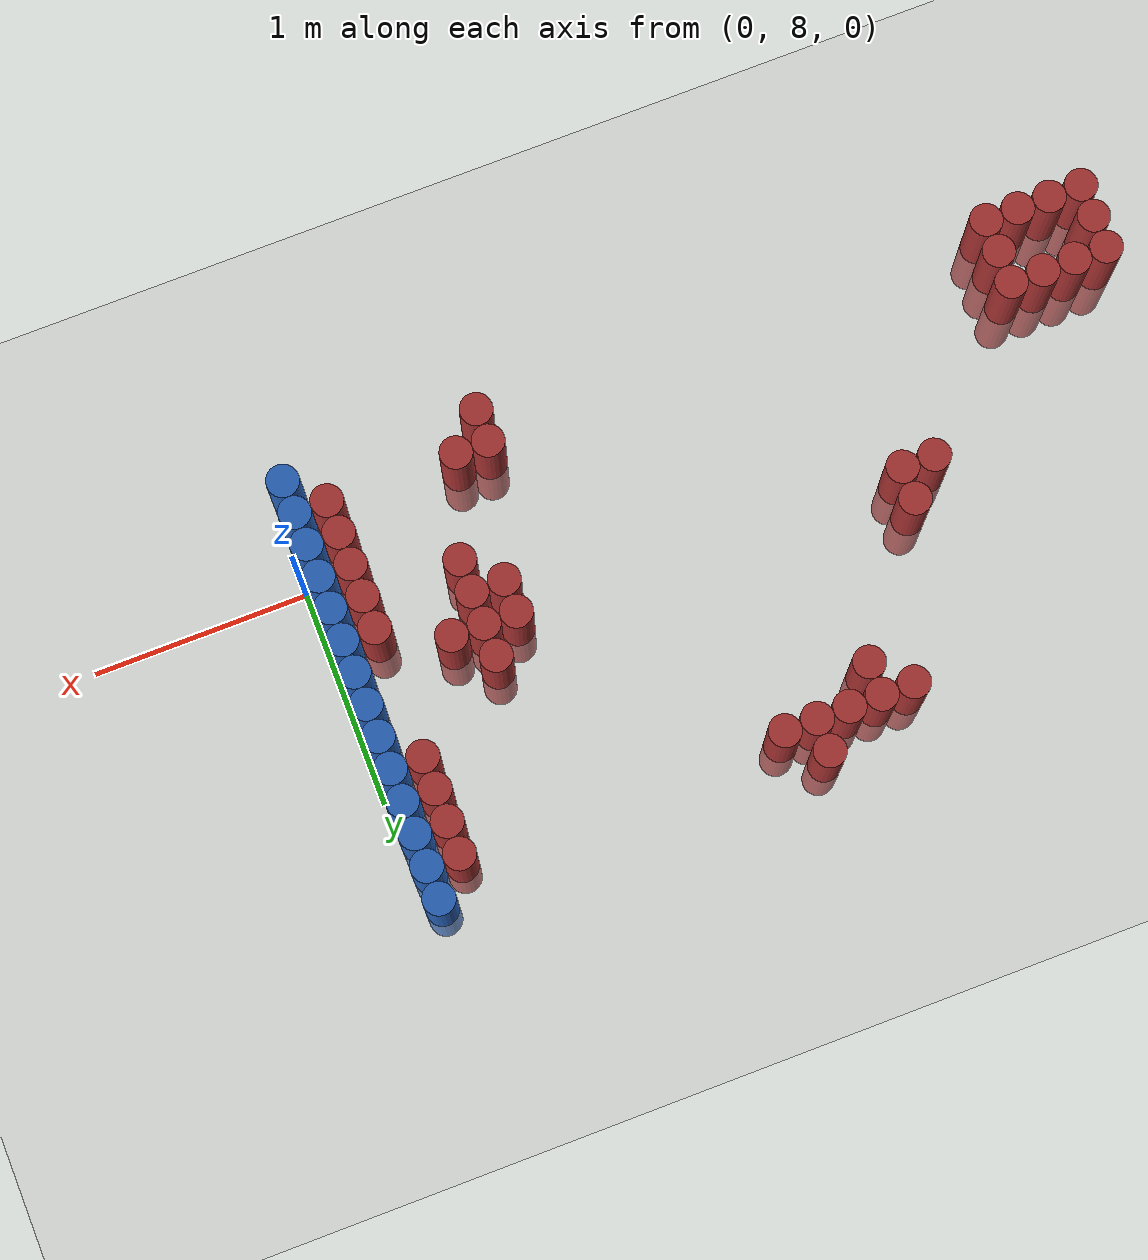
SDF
<sdf version="1.6">
 <world name="default">
  <model name="ground_plane">
   <static>1</static>
   <link name="link">
    <collision name="collision">
     <geometry><plane><normal>0 0 1</normal><size>100 100</size></plane></geometry>
     <surface><friction><ode><mu>100</mu><mu2>50</mu2></ode></friction></surface>
    </collision>
    <visual name="visual">
     <cast_shadows>0</cast_shadows>
     <geometry><plane><normal>0 0 1</normal><size>100 100</size></plane></geometry>
     <material>
      <script><uri>file://media/materials/scripts/gazebo.material</uri><name>Gazebo/Grey</name></script>
     </material>
    </visual>
   </link>
  </model>
  <model name="unit_cylinder_154">
   <static>1</static>
   <pose>-3.825000 7.575000 0.000000 0.000000 0.000000 0.000000</pose>
   <link name="link">
    <inertial>
     <mass>1</mass>
     <inertia><ixx>0.145833</ixx><ixy>0</ixy><ixz>0</ixz><iyy>0.145833</iyy><iyz>0</iyz><izz>0.125</izz></inertia>
    </inertial>
    <collision name="collision">
     <geometry><cylinder><radius>0.075000</radius><length>1</length></cylinder></geometry>
    </collision>
    <visual name="visual">
     <geometry><cylinder><radius>0.075000</radius><length>1</length></cylinder></geometry>
     <material>
      <ambient>0.648000 0.192000 0.192000 1</ambient>
      <diffuse>0.648000 0.192000 0.192000 1</diffuse>
     </material>
     <material>
      <script><name>Gazebo/Grey</name><uri>file://media/materials/scripts/gazebo.material</uri></script>
     </material>
    </visual>
   </link>
  </model>
  <model name="unit_cylinder_155">
   <static>1</static>
   <pose>-3.825000 7.725000 0.000000 0.000000 0.000000 0.000000</pose>
   <link name="link">
    <inertial>
     <mass>1</mass>
     <inertia><ixx>0.145833</ixx><ixy>0</ixy><ixz>0</ixz><iyy>0.145833</iyy><iyz>0</iyz><izz>0.125</izz></inertia>
    </inertial>
    <collision name="collision">
     <geometry><cylinder><radius>0.075000</radius><length>1</length></cylinder></geometry>
    </collision>
    <visual name="visual">
     <geometry><cylinder><radius>0.075000</radius><length>1</length></cylinder></geometry>
     <material>
      <ambient>0.648000 0.192000 0.192000 1</ambient>
      <diffuse>0.648000 0.192000 0.192000 1</diffuse>
     </material>
     <material>
      <script><name>Gazebo/Grey</name><uri>file://media/materials/scripts/gazebo.material</uri></script>
     </material>
    </visual>
   </link>
  </model>
  <model name="unit_cylinder_156">
   <static>1</static>
   <pose>-3.825000 7.875000 0.000000 0.000000 0.000000 0.000000</pose>
   <link name="link">
    <inertial>
     <mass>1</mass>
     <inertia><ixx>0.145833</ixx><ixy>0</ixy><ixz>0</ixz><iyy>0.145833</iyy><iyz>0</iyz><izz>0.125</izz></inertia>
    </inertial>
    <collision name="collision">
     <geometry><cylinder><radius>0.075000</radius><length>1</length></cylinder></geometry>
    </collision>
    <visual name="visual">
     <geometry><cylinder><radius>0.075000</radius><length>1</length></cylinder></geometry>
     <material>
      <ambient>0.648000 0.192000 0.192000 1</ambient>
      <diffuse>0.648000 0.192000 0.192000 1</diffuse>
     </material>
     <material>
      <script><name>Gazebo/Grey</name><uri>file://media/materials/scripts/gazebo.material</uri></script>
     </material>
    </visual>
   </link>
  </model>
  <model name="unit_cylinder_158">
   <static>1</static>
   <pose>-3.675000 7.575000 0.000000 0.000000 0.000000 0.000000</pose>
   <link name="link">
    <inertial>
     <mass>1</mass>
     <inertia><ixx>0.145833</ixx><ixy>0</ixy><ixz>0</ixz><iyy>0.145833</iyy><iyz>0</iyz><izz>0.125</izz></inertia>
    </inertial>
    <collision name="collision">
     <geometry><cylinder><radius>0.075000</radius><length>1</length></cylinder></geometry>
    </collision>
    <visual name="visual">
     <geometry><cylinder><radius>0.075000</radius><length>1</length></cylinder></geometry>
     <material>
      <ambient>0.648000 0.192000 0.192000 1</ambient>
      <diffuse>0.648000 0.192000 0.192000 1</diffuse>
     </material>
     <material>
      <script><name>Gazebo/Grey</name><uri>file://media/materials/scripts/gazebo.material</uri></script>
     </material>
    </visual>
   </link>
  </model>
  <model name="unit_cylinder_159">
   <static>1</static>
   <pose>-3.675000 7.875000 0.000000 0.000000 0.000000 0.000000</pose>
   <link name="link">
    <inertial>
     <mass>1</mass>
     <inertia><ixx>0.145833</ixx><ixy>0</ixy><ixz>0</ixz><iyy>0.145833</iyy><iyz>0</iyz><izz>0.125</izz></inertia>
    </inertial>
    <collision name="collision">
     <geometry><cylinder><radius>0.075000</radius><length>1</length></cylinder></geometry>
    </collision>
    <visual name="visual">
     <geometry><cylinder><radius>0.075000</radius><length>1</length></cylinder></geometry>
     <material>
      <ambient>0.648000 0.192000 0.192000 1</ambient>
      <diffuse>0.648000 0.192000 0.192000 1</diffuse>
     </material>
     <material>
      <script><name>Gazebo/Grey</name><uri>file://media/materials/scripts/gazebo.material</uri></script>
     </material>
    </visual>
   </link>
  </model>
  <model name="unit_cylinder_161">
   <static>1</static>
   <pose>-3.525000 7.575000 0.000000 0.000000 0.000000 0.000000</pose>
   <link name="link">
    <inertial>
     <mass>1</mass>
     <inertia><ixx>0.145833</ixx><ixy>0</ixy><ixz>0</ixz><iyy>0.145833</iyy><iyz>0</iyz><izz>0.125</izz></inertia>
    </inertial>
    <collision name="collision">
     <geometry><cylinder><radius>0.075000</radius><length>1</length></cylinder></geometry>
    </collision>
    <visual name="visual">
     <geometry><cylinder><radius>0.075000</radius><length>1</length></cylinder></geometry>
     <material>
      <ambient>0.648000 0.192000 0.192000 1</ambient>
      <diffuse>0.648000 0.192000 0.192000 1</diffuse>
     </material>
     <material>
      <script><name>Gazebo/Grey</name><uri>file://media/materials/scripts/gazebo.material</uri></script>
     </material>
    </visual>
   </link>
  </model>
  <model name="unit_cylinder_162">
   <static>1</static>
   <pose>-3.525000 7.875000 0.000000 0.000000 0.000000 0.000000</pose>
   <link name="link">
    <inertial>
     <mass>1</mass>
     <inertia><ixx>0.145833</ixx><ixy>0</ixy><ixz>0</ixz><iyy>0.145833</iyy><iyz>0</iyz><izz>0.125</izz></inertia>
    </inertial>
    <collision name="collision">
     <geometry><cylinder><radius>0.075000</radius><length>1</length></cylinder></geometry>
    </collision>
    <visual name="visual">
     <geometry><cylinder><radius>0.075000</radius><length>1</length></cylinder></geometry>
     <material>
      <ambient>0.648000 0.192000 0.192000 1</ambient>
      <diffuse>0.648000 0.192000 0.192000 1</diffuse>
     </material>
     <material>
      <script><name>Gazebo/Grey</name><uri>file://media/materials/scripts/gazebo.material</uri></script>
     </material>
    </visual>
   </link>
  </model>
  <model name="unit_cylinder_164">
   <static>1</static>
   <pose>-3.375000 7.575000 0.000000 0.000000 0.000000 0.000000</pose>
   <link name="link">
    <inertial>
     <mass>1</mass>
     <inertia><ixx>0.145833</ixx><ixy>0</ixy><ixz>0</ixz><iyy>0.145833</iyy><iyz>0</iyz><izz>0.125</izz></inertia>
    </inertial>
    <collision name="collision">
     <geometry><cylinder><radius>0.075000</radius><length>1</length></cylinder></geometry>
    </collision>
    <visual name="visual">
     <geometry><cylinder><radius>0.075000</radius><length>1</length></cylinder></geometry>
     <material>
      <ambient>0.648000 0.192000 0.192000 1</ambient>
      <diffuse>0.648000 0.192000 0.192000 1</diffuse>
     </material>
     <material>
      <script><name>Gazebo/Grey</name><uri>file://media/materials/scripts/gazebo.material</uri></script>
     </material>
    </visual>
   </link>
  </model>
  <model name="unit_cylinder_165">
   <static>1</static>
   <pose>-3.375000 7.725000 0.000000 0.000000 0.000000 0.000000</pose>
   <link name="link">
    <inertial>
     <mass>1</mass>
     <inertia><ixx>0.145833</ixx><ixy>0</ixy><ixz>0</ixz><iyy>0.145833</iyy><iyz>0</iyz><izz>0.125</izz></inertia>
    </inertial>
    <collision name="collision">
     <geometry><cylinder><radius>0.075000</radius><length>1</length></cylinder></geometry>
    </collision>
    <visual name="visual">
     <geometry><cylinder><radius>0.075000</radius><length>1</length></cylinder></geometry>
     <material>
      <ambient>0.648000 0.192000 0.192000 1</ambient>
      <diffuse>0.648000 0.192000 0.192000 1</diffuse>
     </material>
     <material>
      <script><name>Gazebo/Grey</name><uri>file://media/materials/scripts/gazebo.material</uri></script>
     </material>
    </visual>
   </link>
  </model>
  <model name="unit_cylinder_166">
   <static>1</static>
   <pose>-3.375000 7.875000 0.000000 0.000000 0.000000 0.000000</pose>
   <link name="link">
    <inertial>
     <mass>1</mass>
     <inertia><ixx>0.145833</ixx><ixy>0</ixy><ixz>0</ixz><iyy>0.145833</iyy><iyz>0</iyz><izz>0.125</izz></inertia>
    </inertial>
    <collision name="collision">
     <geometry><cylinder><radius>0.075000</radius><length>1</length></cylinder></geometry>
    </collision>
    <visual name="visual">
     <geometry><cylinder><radius>0.075000</radius><length>1</length></cylinder></geometry>
     <material>
      <ambient>0.648000 0.192000 0.192000 1</ambient>
      <diffuse>0.648000 0.192000 0.192000 1</diffuse>
     </material>
     <material>
      <script><name>Gazebo/Grey</name><uri>file://media/materials/scripts/gazebo.material</uri></script>
     </material>
    </visual>
   </link>
  </model>
  <model name="unit_cylinder_176">
   <static>1</static>
   <pose>-2.775000 8.475000 0.000000 0.000000 0.000000 0.000000</pose>
   <link name="link">
    <inertial>
     <mass>1</mass>
     <inertia><ixx>0.145833</ixx><ixy>0</ixy><ixz>0</ixz><iyy>0.145833</iyy><iyz>0</iyz><izz>0.125</izz></inertia>
    </inertial>
    <collision name="collision">
     <geometry><cylinder><radius>0.075000</radius><length>1</length></cylinder></geometry>
    </collision>
    <visual name="visual">
     <geometry><cylinder><radius>0.075000</radius><length>1</length></cylinder></geometry>
     <material>
      <ambient>0.648000 0.192000 0.192000 1</ambient>
      <diffuse>0.648000 0.192000 0.192000 1</diffuse>
     </material>
     <material>
      <script><name>Gazebo/Grey</name><uri>file://media/materials/scripts/gazebo.material</uri></script>
     </material>
    </visual>
   </link>
  </model>
  <model name="unit_cylinder_177">
   <static>1</static>
   <pose>-2.625000 8.475000 0.000000 0.000000 0.000000 0.000000</pose>
   <link name="link">
    <inertial>
     <mass>1</mass>
     <inertia><ixx>0.145833</ixx><ixy>0</ixy><ixz>0</ixz><iyy>0.145833</iyy><iyz>0</iyz><izz>0.125</izz></inertia>
    </inertial>
    <collision name="collision">
     <geometry><cylinder><radius>0.075000</radius><length>1</length></cylinder></geometry>
    </collision>
    <visual name="visual">
     <geometry><cylinder><radius>0.075000</radius><length>1</length></cylinder></geometry>
     <material>
      <ambient>0.648000 0.192000 0.192000 1</ambient>
      <diffuse>0.648000 0.192000 0.192000 1</diffuse>
     </material>
     <material>
      <script><name>Gazebo/Grey</name><uri>file://media/materials/scripts/gazebo.material</uri></script>
     </material>
    </visual>
   </link>
  </model>
  <model name="unit_cylinder_178">
   <static>1</static>
   <pose>-2.625000 8.625000 0.000000 0.000000 0.000000 0.000000</pose>
   <link name="link">
    <inertial>
     <mass>1</mass>
     <inertia><ixx>0.145833</ixx><ixy>0</ixy><ixz>0</ixz><iyy>0.145833</iyy><iyz>0</iyz><izz>0.125</izz></inertia>
    </inertial>
    <collision name="collision">
     <geometry><cylinder><radius>0.075000</radius><length>1</length></cylinder></geometry>
    </collision>
    <visual name="visual">
     <geometry><cylinder><radius>0.075000</radius><length>1</length></cylinder></geometry>
     <material>
      <ambient>0.648000 0.192000 0.192000 1</ambient>
      <diffuse>0.648000 0.192000 0.192000 1</diffuse>
     </material>
     <material>
      <script><name>Gazebo/Grey</name><uri>file://media/materials/scripts/gazebo.material</uri></script>
     </material>
    </visual>
   </link>
  </model>
  <model name="unit_cylinder_179">
   <static>1</static>
   <pose>-2.325000 9.375000 0.000000 0.000000 0.000000 0.000000</pose>
   <link name="link">
    <inertial>
     <mass>1</mass>
     <inertia><ixx>0.145833</ixx><ixy>0</ixy><ixz>0</ixz><iyy>0.145833</iyy><iyz>0</iyz><izz>0.125</izz></inertia>
    </inertial>
    <collision name="collision">
     <geometry><cylinder><radius>0.075000</radius><length>1</length></cylinder></geometry>
    </collision>
    <visual name="visual">
     <geometry><cylinder><radius>0.075000</radius><length>1</length></cylinder></geometry>
     <material>
      <ambient>0.648000 0.192000 0.192000 1</ambient>
      <diffuse>0.648000 0.192000 0.192000 1</diffuse>
     </material>
     <material>
      <script><name>Gazebo/Grey</name><uri>file://media/materials/scripts/gazebo.material</uri></script>
     </material>
    </visual>
   </link>
  </model>
  <model name="unit_cylinder_180">
   <static>1</static>
   <pose>-2.175000 9.225000 0.000000 0.000000 0.000000 0.000000</pose>
   <link name="link">
    <inertial>
     <mass>1</mass>
     <inertia><ixx>0.145833</ixx><ixy>0</ixy><ixz>0</ixz><iyy>0.145833</iyy><iyz>0</iyz><izz>0.125</izz></inertia>
    </inertial>
    <collision name="collision">
     <geometry><cylinder><radius>0.075000</radius><length>1</length></cylinder></geometry>
    </collision>
    <visual name="visual">
     <geometry><cylinder><radius>0.075000</radius><length>1</length></cylinder></geometry>
     <material>
      <ambient>0.648000 0.192000 0.192000 1</ambient>
      <diffuse>0.648000 0.192000 0.192000 1</diffuse>
     </material>
     <material>
      <script><name>Gazebo/Grey</name><uri>file://media/materials/scripts/gazebo.material</uri></script>
     </material>
    </visual>
   </link>
  </model>
  <model name="unit_cylinder_181">
   <static>1</static>
   <pose>-2.175000 9.375000 0.000000 0.000000 0.000000 0.000000</pose>
   <link name="link">
    <inertial>
     <mass>1</mass>
     <inertia><ixx>0.145833</ixx><ixy>0</ixy><ixz>0</ixz><iyy>0.145833</iyy><iyz>0</iyz><izz>0.125</izz></inertia>
    </inertial>
    <collision name="collision">
     <geometry><cylinder><radius>0.075000</radius><length>1</length></cylinder></geometry>
    </collision>
    <visual name="visual">
     <geometry><cylinder><radius>0.075000</radius><length>1</length></cylinder></geometry>
     <material>
      <ambient>0.648000 0.192000 0.192000 1</ambient>
      <diffuse>0.648000 0.192000 0.192000 1</diffuse>
     </material>
     <material>
      <script><name>Gazebo/Grey</name><uri>file://media/materials/scripts/gazebo.material</uri></script>
     </material>
    </visual>
   </link>
  </model>
  <model name="unit_cylinder_182">
   <static>1</static>
   <pose>-2.025000 9.375000 0.000000 0.000000 0.000000 0.000000</pose>
   <link name="link">
    <inertial>
     <mass>1</mass>
     <inertia><ixx>0.145833</ixx><ixy>0</ixy><ixz>0</ixz><iyy>0.145833</iyy><iyz>0</iyz><izz>0.125</izz></inertia>
    </inertial>
    <collision name="collision">
     <geometry><cylinder><radius>0.075000</radius><length>1</length></cylinder></geometry>
    </collision>
    <visual name="visual">
     <geometry><cylinder><radius>0.075000</radius><length>1</length></cylinder></geometry>
     <material>
      <ambient>0.648000 0.192000 0.192000 1</ambient>
      <diffuse>0.648000 0.192000 0.192000 1</diffuse>
     </material>
     <material>
      <script><name>Gazebo/Grey</name><uri>file://media/materials/scripts/gazebo.material</uri></script>
     </material>
    </visual>
   </link>
  </model>
  <model name="unit_cylinder_183">
   <static>1</static>
   <pose>-1.875000 9.375000 0.000000 0.000000 0.000000 0.000000</pose>
   <link name="link">
    <inertial>
     <mass>1</mass>
     <inertia><ixx>0.145833</ixx><ixy>0</ixy><ixz>0</ixz><iyy>0.145833</iyy><iyz>0</iyz><izz>0.125</izz></inertia>
    </inertial>
    <collision name="collision">
     <geometry><cylinder><radius>0.075000</radius><length>1</length></cylinder></geometry>
    </collision>
    <visual name="visual">
     <geometry><cylinder><radius>0.075000</radius><length>1</length></cylinder></geometry>
     <material>
      <ambient>0.648000 0.192000 0.192000 1</ambient>
      <diffuse>0.648000 0.192000 0.192000 1</diffuse>
     </material>
     <material>
      <script><name>Gazebo/Grey</name><uri>file://media/materials/scripts/gazebo.material</uri></script>
     </material>
    </visual>
   </link>
  </model>
  <model name="unit_cylinder_184">
   <static>1</static>
   <pose>-1.875000 9.525000 0.000000 0.000000 0.000000 0.000000</pose>
   <link name="link">
    <inertial>
     <mass>1</mass>
     <inertia><ixx>0.145833</ixx><ixy>0</ixy><ixz>0</ixz><iyy>0.145833</iyy><iyz>0</iyz><izz>0.125</izz></inertia>
    </inertial>
    <collision name="collision">
     <geometry><cylinder><radius>0.075000</radius><length>1</length></cylinder></geometry>
    </collision>
    <visual name="visual">
     <geometry><cylinder><radius>0.075000</radius><length>1</length></cylinder></geometry>
     <material>
      <ambient>0.648000 0.192000 0.192000 1</ambient>
      <diffuse>0.648000 0.192000 0.192000 1</diffuse>
     </material>
     <material>
      <script><name>Gazebo/Grey</name><uri>file://media/materials/scripts/gazebo.material</uri></script>
     </material>
    </visual>
   </link>
  </model>
  <model name="unit_cylinder_186">
   <static>1</static>
   <pose>-1.725000 9.375000 0.000000 0.000000 0.000000 0.000000</pose>
   <link name="link">
    <inertial>
     <mass>1</mass>
     <inertia><ixx>0.145833</ixx><ixy>0</ixy><ixz>0</ixz><iyy>0.145833</iyy><iyz>0</iyz><izz>0.125</izz></inertia>
    </inertial>
    <collision name="collision">
     <geometry><cylinder><radius>0.075000</radius><length>1</length></cylinder></geometry>
    </collision>
    <visual name="visual">
     <geometry><cylinder><radius>0.075000</radius><length>1</length></cylinder></geometry>
     <material>
      <ambient>0.648000 0.192000 0.192000 1</ambient>
      <diffuse>0.648000 0.192000 0.192000 1</diffuse>
     </material>
     <material>
      <script><name>Gazebo/Grey</name><uri>file://media/materials/scripts/gazebo.material</uri></script>
     </material>
    </visual>
   </link>
  </model>
  <model name="unit_cylinder_203">
   <static>1</static>
   <pose>-0.975000 7.575000 0.000000 0.000000 0.000000 0.000000</pose>
   <link name="link">
    <inertial>
     <mass>1</mass>
     <inertia><ixx>0.145833</ixx><ixy>0</ixy><ixz>0</ixz><iyy>0.145833</iyy><iyz>0</iyz><izz>0.125</izz></inertia>
    </inertial>
    <collision name="collision">
     <geometry><cylinder><radius>0.075000</radius><length>1</length></cylinder></geometry>
    </collision>
    <visual name="visual">
     <geometry><cylinder><radius>0.075000</radius><length>1</length></cylinder></geometry>
     <material>
      <ambient>0.648000 0.192000 0.192000 1</ambient>
      <diffuse>0.648000 0.192000 0.192000 1</diffuse>
     </material>
     <material>
      <script><name>Gazebo/Grey</name><uri>file://media/materials/scripts/gazebo.material</uri></script>
     </material>
    </visual>
   </link>
  </model>
  <model name="unit_cylinder_204">
   <static>1</static>
   <pose>-0.975000 7.725000 0.000000 0.000000 0.000000 0.000000</pose>
   <link name="link">
    <inertial>
     <mass>1</mass>
     <inertia><ixx>0.145833</ixx><ixy>0</ixy><ixz>0</ixz><iyy>0.145833</iyy><iyz>0</iyz><izz>0.125</izz></inertia>
    </inertial>
    <collision name="collision">
     <geometry><cylinder><radius>0.075000</radius><length>1</length></cylinder></geometry>
    </collision>
    <visual name="visual">
     <geometry><cylinder><radius>0.075000</radius><length>1</length></cylinder></geometry>
     <material>
      <ambient>0.648000 0.192000 0.192000 1</ambient>
      <diffuse>0.648000 0.192000 0.192000 1</diffuse>
     </material>
     <material>
      <script><name>Gazebo/Grey</name><uri>file://media/materials/scripts/gazebo.material</uri></script>
     </material>
    </visual>
   </link>
  </model>
  <model name="unit_cylinder_207">
   <static>1</static>
   <pose>-0.825000 7.725000 0.000000 0.000000 0.000000 0.000000</pose>
   <link name="link">
    <inertial>
     <mass>1</mass>
     <inertia><ixx>0.145833</ixx><ixy>0</ixy><ixz>0</ixz><iyy>0.145833</iyy><iyz>0</iyz><izz>0.125</izz></inertia>
    </inertial>
    <collision name="collision">
     <geometry><cylinder><radius>0.075000</radius><length>1</length></cylinder></geometry>
    </collision>
    <visual name="visual">
     <geometry><cylinder><radius>0.075000</radius><length>1</length></cylinder></geometry>
     <material>
      <ambient>0.648000 0.192000 0.192000 1</ambient>
      <diffuse>0.648000 0.192000 0.192000 1</diffuse>
     </material>
     <material>
      <script><name>Gazebo/Grey</name><uri>file://media/materials/scripts/gazebo.material</uri></script>
     </material>
    </visual>
   </link>
  </model>
  <model name="unit_cylinder_208">
   <static>1</static>
   <pose>-0.825000 8.325000 0.000000 0.000000 0.000000 0.000000</pose>
   <link name="link">
    <inertial>
     <mass>1</mass>
     <inertia><ixx>0.145833</ixx><ixy>0</ixy><ixz>0</ixz><iyy>0.145833</iyy><iyz>0</iyz><izz>0.125</izz></inertia>
    </inertial>
    <collision name="collision">
     <geometry><cylinder><radius>0.075000</radius><length>1</length></cylinder></geometry>
    </collision>
    <visual name="visual">
     <geometry><cylinder><radius>0.075000</radius><length>1</length></cylinder></geometry>
     <material>
      <ambient>0.648000 0.192000 0.192000 1</ambient>
      <diffuse>0.648000 0.192000 0.192000 1</diffuse>
     </material>
     <material>
      <script><name>Gazebo/Grey</name><uri>file://media/materials/scripts/gazebo.material</uri></script>
     </material>
    </visual>
   </link>
  </model>
  <model name="unit_cylinder_209">
   <static>1</static>
   <pose>-0.825000 8.475000 0.000000 0.000000 0.000000 0.000000</pose>
   <link name="link">
    <inertial>
     <mass>1</mass>
     <inertia><ixx>0.145833</ixx><ixy>0</ixy><ixz>0</ixz><iyy>0.145833</iyy><iyz>0</iyz><izz>0.125</izz></inertia>
    </inertial>
    <collision name="collision">
     <geometry><cylinder><radius>0.075000</radius><length>1</length></cylinder></geometry>
    </collision>
    <visual name="visual">
     <geometry><cylinder><radius>0.075000</radius><length>1</length></cylinder></geometry>
     <material>
      <ambient>0.648000 0.192000 0.192000 1</ambient>
      <diffuse>0.648000 0.192000 0.192000 1</diffuse>
     </material>
     <material>
      <script><name>Gazebo/Grey</name><uri>file://media/materials/scripts/gazebo.material</uri></script>
     </material>
    </visual>
   </link>
  </model>
  <model name="unit_cylinder_212">
   <static>1</static>
   <pose>-0.675000 8.175000 0.000000 0.000000 0.000000 0.000000</pose>
   <link name="link">
    <inertial>
     <mass>1</mass>
     <inertia><ixx>0.145833</ixx><ixy>0</ixy><ixz>0</ixz><iyy>0.145833</iyy><iyz>0</iyz><izz>0.125</izz></inertia>
    </inertial>
    <collision name="collision">
     <geometry><cylinder><radius>0.075000</radius><length>1</length></cylinder></geometry>
    </collision>
    <visual name="visual">
     <geometry><cylinder><radius>0.075000</radius><length>1</length></cylinder></geometry>
     <material>
      <ambient>0.648000 0.192000 0.192000 1</ambient>
      <diffuse>0.648000 0.192000 0.192000 1</diffuse>
     </material>
     <material>
      <script><name>Gazebo/Grey</name><uri>file://media/materials/scripts/gazebo.material</uri></script>
     </material>
    </visual>
   </link>
  </model>
  <model name="unit_cylinder_213">
   <static>1</static>
   <pose>-0.675000 8.325000 0.000000 0.000000 0.000000 0.000000</pose>
   <link name="link">
    <inertial>
     <mass>1</mass>
     <inertia><ixx>0.145833</ixx><ixy>0</ixy><ixz>0</ixz><iyy>0.145833</iyy><iyz>0</iyz><izz>0.125</izz></inertia>
    </inertial>
    <collision name="collision">
     <geometry><cylinder><radius>0.075000</radius><length>1</length></cylinder></geometry>
    </collision>
    <visual name="visual">
     <geometry><cylinder><radius>0.075000</radius><length>1</length></cylinder></geometry>
     <material>
      <ambient>0.648000 0.192000 0.192000 1</ambient>
      <diffuse>0.648000 0.192000 0.192000 1</diffuse>
     </material>
     <material>
      <script><name>Gazebo/Grey</name><uri>file://media/materials/scripts/gazebo.material</uri></script>
     </material>
    </visual>
   </link>
  </model>
  <model name="unit_cylinder_214">
   <static>1</static>
   <pose>-0.675000 8.475000 0.000000 0.000000 0.000000 0.000000</pose>
   <link name="link">
    <inertial>
     <mass>1</mass>
     <inertia><ixx>0.145833</ixx><ixy>0</ixy><ixz>0</ixz><iyy>0.145833</iyy><iyz>0</iyz><izz>0.125</izz></inertia>
    </inertial>
    <collision name="collision">
     <geometry><cylinder><radius>0.075000</radius><length>1</length></cylinder></geometry>
    </collision>
    <visual name="visual">
     <geometry><cylinder><radius>0.075000</radius><length>1</length></cylinder></geometry>
     <material>
      <ambient>0.648000 0.192000 0.192000 1</ambient>
      <diffuse>0.648000 0.192000 0.192000 1</diffuse>
     </material>
     <material>
      <script><name>Gazebo/Grey</name><uri>file://media/materials/scripts/gazebo.material</uri></script>
     </material>
    </visual>
   </link>
  </model>
  <model name="unit_cylinder_215">
   <static>1</static>
   <pose>-0.675000 8.625000 0.000000 0.000000 0.000000 0.000000</pose>
   <link name="link">
    <inertial>
     <mass>1</mass>
     <inertia><ixx>0.145833</ixx><ixy>0</ixy><ixz>0</ixz><iyy>0.145833</iyy><iyz>0</iyz><izz>0.125</izz></inertia>
    </inertial>
    <collision name="collision">
     <geometry><cylinder><radius>0.075000</radius><length>1</length></cylinder></geometry>
    </collision>
    <visual name="visual">
     <geometry><cylinder><radius>0.075000</radius><length>1</length></cylinder></geometry>
     <material>
      <ambient>0.648000 0.192000 0.192000 1</ambient>
      <diffuse>0.648000 0.192000 0.192000 1</diffuse>
     </material>
     <material>
      <script><name>Gazebo/Grey</name><uri>file://media/materials/scripts/gazebo.material</uri></script>
     </material>
    </visual>
   </link>
  </model>
  <model name="unit_cylinder_216">
   <static>1</static>
   <pose>-0.525000 8.475000 0.000000 0.000000 0.000000 0.000000</pose>
   <link name="link">
    <inertial>
     <mass>1</mass>
     <inertia><ixx>0.145833</ixx><ixy>0</ixy><ixz>0</ixz><iyy>0.145833</iyy><iyz>0</iyz><izz>0.125</izz></inertia>
    </inertial>
    <collision name="collision">
     <geometry><cylinder><radius>0.075000</radius><length>1</length></cylinder></geometry>
    </collision>
    <visual name="visual">
     <geometry><cylinder><radius>0.075000</radius><length>1</length></cylinder></geometry>
     <material>
      <ambient>0.648000 0.192000 0.192000 1</ambient>
      <diffuse>0.648000 0.192000 0.192000 1</diffuse>
     </material>
     <material>
      <script><name>Gazebo/Grey</name><uri>file://media/materials/scripts/gazebo.material</uri></script>
     </material>
    </visual>
   </link>
  </model>
  <model name="unit_cylinder_227">
   <static>1</static>
   <pose>-0.225000 7.725000 0.000000 0.000000 0.000000 0.000000</pose>
   <link name="link">
    <inertial>
     <mass>1</mass>
     <inertia><ixx>0.145833</ixx><ixy>0</ixy><ixz>0</ixz><iyy>0.145833</iyy><iyz>0</iyz><izz>0.125</izz></inertia>
    </inertial>
    <collision name="collision">
     <geometry><cylinder><radius>0.075000</radius><length>1</length></cylinder></geometry>
    </collision>
    <visual name="visual">
     <geometry><cylinder><radius>0.075000</radius><length>1</length></cylinder></geometry>
     <material>
      <ambient>0.648000 0.192000 0.192000 1</ambient>
      <diffuse>0.648000 0.192000 0.192000 1</diffuse>
     </material>
     <material>
      <script><name>Gazebo/Grey</name><uri>file://media/materials/scripts/gazebo.material</uri></script>
     </material>
    </visual>
   </link>
  </model>
  <model name="unit_cylinder_228">
   <static>1</static>
   <pose>-0.225000 7.875000 0.000000 0.000000 0.000000 0.000000</pose>
   <link name="link">
    <inertial>
     <mass>1</mass>
     <inertia><ixx>0.145833</ixx><ixy>0</ixy><ixz>0</ixz><iyy>0.145833</iyy><iyz>0</iyz><izz>0.125</izz></inertia>
    </inertial>
    <collision name="collision">
     <geometry><cylinder><radius>0.075000</radius><length>1</length></cylinder></geometry>
    </collision>
    <visual name="visual">
     <geometry><cylinder><radius>0.075000</radius><length>1</length></cylinder></geometry>
     <material>
      <ambient>0.648000 0.192000 0.192000 1</ambient>
      <diffuse>0.648000 0.192000 0.192000 1</diffuse>
     </material>
     <material>
      <script><name>Gazebo/Grey</name><uri>file://media/materials/scripts/gazebo.material</uri></script>
     </material>
    </visual>
   </link>
  </model>
  <model name="unit_cylinder_229">
   <static>1</static>
   <pose>-0.225000 8.025000 0.000000 0.000000 0.000000 0.000000</pose>
   <link name="link">
    <inertial>
     <mass>1</mass>
     <inertia><ixx>0.145833</ixx><ixy>0</ixy><ixz>0</ixz><iyy>0.145833</iyy><iyz>0</iyz><izz>0.125</izz></inertia>
    </inertial>
    <collision name="collision">
     <geometry><cylinder><radius>0.075000</radius><length>1</length></cylinder></geometry>
    </collision>
    <visual name="visual">
     <geometry><cylinder><radius>0.075000</radius><length>1</length></cylinder></geometry>
     <material>
      <ambient>0.648000 0.192000 0.192000 1</ambient>
      <diffuse>0.648000 0.192000 0.192000 1</diffuse>
     </material>
     <material>
      <script><name>Gazebo/Grey</name><uri>file://media/materials/scripts/gazebo.material</uri></script>
     </material>
    </visual>
   </link>
  </model>
  <model name="unit_cylinder_230">
   <static>1</static>
   <pose>-0.225000 8.175000 0.000000 0.000000 0.000000 0.000000</pose>
   <link name="link">
    <inertial>
     <mass>1</mass>
     <inertia><ixx>0.145833</ixx><ixy>0</ixy><ixz>0</ixz><iyy>0.145833</iyy><iyz>0</iyz><izz>0.125</izz></inertia>
    </inertial>
    <collision name="collision">
     <geometry><cylinder><radius>0.075000</radius><length>1</length></cylinder></geometry>
    </collision>
    <visual name="visual">
     <geometry><cylinder><radius>0.075000</radius><length>1</length></cylinder></geometry>
     <material>
      <ambient>0.648000 0.192000 0.192000 1</ambient>
      <diffuse>0.648000 0.192000 0.192000 1</diffuse>
     </material>
     <material>
      <script><name>Gazebo/Grey</name><uri>file://media/materials/scripts/gazebo.material</uri></script>
     </material>
    </visual>
   </link>
  </model>
  <model name="unit_cylinder_231">
   <static>1</static>
   <pose>-0.225000 8.325000 0.000000 0.000000 0.000000 0.000000</pose>
   <link name="link">
    <inertial>
     <mass>1</mass>
     <inertia><ixx>0.145833</ixx><ixy>0</ixy><ixz>0</ixz><iyy>0.145833</iyy><iyz>0</iyz><izz>0.125</izz></inertia>
    </inertial>
    <collision name="collision">
     <geometry><cylinder><radius>0.075000</radius><length>1</length></cylinder></geometry>
    </collision>
    <visual name="visual">
     <geometry><cylinder><radius>0.075000</radius><length>1</length></cylinder></geometry>
     <material>
      <ambient>0.648000 0.192000 0.192000 1</ambient>
      <diffuse>0.648000 0.192000 0.192000 1</diffuse>
     </material>
     <material>
      <script><name>Gazebo/Grey</name><uri>file://media/materials/scripts/gazebo.material</uri></script>
     </material>
    </visual>
   </link>
  </model>
  <model name="unit_cylinder_232">
   <static>1</static>
   <pose>-0.225000 8.925000 0.000000 0.000000 0.000000 0.000000</pose>
   <link name="link">
    <inertial>
     <mass>1</mass>
     <inertia><ixx>0.145833</ixx><ixy>0</ixy><ixz>0</ixz><iyy>0.145833</iyy><iyz>0</iyz><izz>0.125</izz></inertia>
    </inertial>
    <collision name="collision">
     <geometry><cylinder><radius>0.075000</radius><length>1</length></cylinder></geometry>
    </collision>
    <visual name="visual">
     <geometry><cylinder><radius>0.075000</radius><length>1</length></cylinder></geometry>
     <material>
      <ambient>0.648000 0.192000 0.192000 1</ambient>
      <diffuse>0.648000 0.192000 0.192000 1</diffuse>
     </material>
     <material>
      <script><name>Gazebo/Grey</name><uri>file://media/materials/scripts/gazebo.material</uri></script>
     </material>
    </visual>
   </link>
  </model>
  <model name="unit_cylinder_233">
   <static>1</static>
   <pose>-0.225000 9.075000 0.000000 0.000000 0.000000 0.000000</pose>
   <link name="link">
    <inertial>
     <mass>1</mass>
     <inertia><ixx>0.145833</ixx><ixy>0</ixy><ixz>0</ixz><iyy>0.145833</iyy><iyz>0</iyz><izz>0.125</izz></inertia>
    </inertial>
    <collision name="collision">
     <geometry><cylinder><radius>0.075000</radius><length>1</length></cylinder></geometry>
    </collision>
    <visual name="visual">
     <geometry><cylinder><radius>0.075000</radius><length>1</length></cylinder></geometry>
     <material>
      <ambient>0.648000 0.192000 0.192000 1</ambient>
      <diffuse>0.648000 0.192000 0.192000 1</diffuse>
     </material>
     <material>
      <script><name>Gazebo/Grey</name><uri>file://media/materials/scripts/gazebo.material</uri></script>
     </material>
    </visual>
   </link>
  </model>
  <model name="unit_cylinder_234">
   <static>1</static>
   <pose>-0.225000 9.225000 0.000000 0.000000 0.000000 0.000000</pose>
   <link name="link">
    <inertial>
     <mass>1</mass>
     <inertia><ixx>0.145833</ixx><ixy>0</ixy><ixz>0</ixz><iyy>0.145833</iyy><iyz>0</iyz><izz>0.125</izz></inertia>
    </inertial>
    <collision name="collision">
     <geometry><cylinder><radius>0.075000</radius><length>1</length></cylinder></geometry>
    </collision>
    <visual name="visual">
     <geometry><cylinder><radius>0.075000</radius><length>1</length></cylinder></geometry>
     <material>
      <ambient>0.648000 0.192000 0.192000 1</ambient>
      <diffuse>0.648000 0.192000 0.192000 1</diffuse>
     </material>
     <material>
      <script><name>Gazebo/Grey</name><uri>file://media/materials/scripts/gazebo.material</uri></script>
     </material>
    </visual>
   </link>
  </model>
  <model name="unit_cylinder_235">
   <static>1</static>
   <pose>-0.225000 9.375000 0.000000 0.000000 0.000000 0.000000</pose>
   <link name="link">
    <inertial>
     <mass>1</mass>
     <inertia><ixx>0.145833</ixx><ixy>0</ixy><ixz>0</ixz><iyy>0.145833</iyy><iyz>0</iyz><izz>0.125</izz></inertia>
    </inertial>
    <collision name="collision">
     <geometry><cylinder><radius>0.075000</radius><length>1</length></cylinder></geometry>
    </collision>
    <visual name="visual">
     <geometry><cylinder><radius>0.075000</radius><length>1</length></cylinder></geometry>
     <material>
      <ambient>0.648000 0.192000 0.192000 1</ambient>
      <diffuse>0.648000 0.192000 0.192000 1</diffuse>
     </material>
     <material>
      <script><name>Gazebo/Grey</name><uri>file://media/materials/scripts/gazebo.material</uri></script>
     </material>
    </visual>
   </link>
  </model>
  <model name="unit_cylinder_252">
   <static>1</static>
   <pose>-0.075000 7.575000 0.000000 0.000000 0.000000 0.000000</pose>
   <link name="link">
    <inertial>
     <mass>1</mass>
     <inertia><ixx>0.145833</ixx><ixy>0</ixy><ixz>0</ixz><iyy>0.145833</iyy><iyz>0</iyz><izz>0.125</izz></inertia>
    </inertial>
    <collision name="collision">
     <geometry><cylinder><radius>0.075000</radius><length>1</length></cylinder></geometry>
    </collision>
    <visual name="visual">
     <geometry><cylinder><radius>0.075000</radius><length>1</length></cylinder></geometry>
     <material>
      <ambient>0.152000 0.379000 0.720000 1</ambient>
      <diffuse>0.152000 0.379000 0.720000 1</diffuse>
     </material>
     <material>
      <script><name>Gazebo/Grey</name><uri>file://media/materials/scripts/gazebo.material</uri></script>
     </material>
    </visual>
   </link>
  </model>
  <model name="unit_cylinder_253">
   <static>1</static>
   <pose>-0.075000 7.725000 0.000000 0.000000 0.000000 0.000000</pose>
   <link name="link">
    <inertial>
     <mass>1</mass>
     <inertia><ixx>0.145833</ixx><ixy>0</ixy><ixz>0</ixz><iyy>0.145833</iyy><iyz>0</iyz><izz>0.125</izz></inertia>
    </inertial>
    <collision name="collision">
     <geometry><cylinder><radius>0.075000</radius><length>1</length></cylinder></geometry>
    </collision>
    <visual name="visual">
     <geometry><cylinder><radius>0.075000</radius><length>1</length></cylinder></geometry>
     <material>
      <ambient>0.152000 0.379000 0.720000 1</ambient>
      <diffuse>0.152000 0.379000 0.720000 1</diffuse>
     </material>
     <material>
      <script><name>Gazebo/Grey</name><uri>file://media/materials/scripts/gazebo.material</uri></script>
     </material>
    </visual>
   </link>
  </model>
  <model name="unit_cylinder_254">
   <static>1</static>
   <pose>-0.075000 7.875000 0.000000 0.000000 0.000000 0.000000</pose>
   <link name="link">
    <inertial>
     <mass>1</mass>
     <inertia><ixx>0.145833</ixx><ixy>0</ixy><ixz>0</ixz><iyy>0.145833</iyy><iyz>0</iyz><izz>0.125</izz></inertia>
    </inertial>
    <collision name="collision">
     <geometry><cylinder><radius>0.075000</radius><length>1</length></cylinder></geometry>
    </collision>
    <visual name="visual">
     <geometry><cylinder><radius>0.075000</radius><length>1</length></cylinder></geometry>
     <material>
      <ambient>0.152000 0.379000 0.720000 1</ambient>
      <diffuse>0.152000 0.379000 0.720000 1</diffuse>
     </material>
     <material>
      <script><name>Gazebo/Grey</name><uri>file://media/materials/scripts/gazebo.material</uri></script>
     </material>
    </visual>
   </link>
  </model>
  <model name="unit_cylinder_255">
   <static>1</static>
   <pose>-0.075000 8.025000 0.000000 0.000000 0.000000 0.000000</pose>
   <link name="link">
    <inertial>
     <mass>1</mass>
     <inertia><ixx>0.145833</ixx><ixy>0</ixy><ixz>0</ixz><iyy>0.145833</iyy><iyz>0</iyz><izz>0.125</izz></inertia>
    </inertial>
    <collision name="collision">
     <geometry><cylinder><radius>0.075000</radius><length>1</length></cylinder></geometry>
    </collision>
    <visual name="visual">
     <geometry><cylinder><radius>0.075000</radius><length>1</length></cylinder></geometry>
     <material>
      <ambient>0.152000 0.379000 0.720000 1</ambient>
      <diffuse>0.152000 0.379000 0.720000 1</diffuse>
     </material>
     <material>
      <script><name>Gazebo/Grey</name><uri>file://media/materials/scripts/gazebo.material</uri></script>
     </material>
    </visual>
   </link>
  </model>
  <model name="unit_cylinder_256">
   <static>1</static>
   <pose>-0.075000 8.175000 0.000000 0.000000 0.000000 0.000000</pose>
   <link name="link">
    <inertial>
     <mass>1</mass>
     <inertia><ixx>0.145833</ixx><ixy>0</ixy><ixz>0</ixz><iyy>0.145833</iyy><iyz>0</iyz><izz>0.125</izz></inertia>
    </inertial>
    <collision name="collision">
     <geometry><cylinder><radius>0.075000</radius><length>1</length></cylinder></geometry>
    </collision>
    <visual name="visual">
     <geometry><cylinder><radius>0.075000</radius><length>1</length></cylinder></geometry>
     <material>
      <ambient>0.152000 0.379000 0.720000 1</ambient>
      <diffuse>0.152000 0.379000 0.720000 1</diffuse>
     </material>
     <material>
      <script><name>Gazebo/Grey</name><uri>file://media/materials/scripts/gazebo.material</uri></script>
     </material>
    </visual>
   </link>
  </model>
  <model name="unit_cylinder_257">
   <static>1</static>
   <pose>-0.075000 8.325000 0.000000 0.000000 0.000000 0.000000</pose>
   <link name="link">
    <inertial>
     <mass>1</mass>
     <inertia><ixx>0.145833</ixx><ixy>0</ixy><ixz>0</ixz><iyy>0.145833</iyy><iyz>0</iyz><izz>0.125</izz></inertia>
    </inertial>
    <collision name="collision">
     <geometry><cylinder><radius>0.075000</radius><length>1</length></cylinder></geometry>
    </collision>
    <visual name="visual">
     <geometry><cylinder><radius>0.075000</radius><length>1</length></cylinder></geometry>
     <material>
      <ambient>0.152000 0.379000 0.720000 1</ambient>
      <diffuse>0.152000 0.379000 0.720000 1</diffuse>
     </material>
     <material>
      <script><name>Gazebo/Grey</name><uri>file://media/materials/scripts/gazebo.material</uri></script>
     </material>
    </visual>
   </link>
  </model>
  <model name="unit_cylinder_258">
   <static>1</static>
   <pose>-0.075000 8.475000 0.000000 0.000000 0.000000 0.000000</pose>
   <link name="link">
    <inertial>
     <mass>1</mass>
     <inertia><ixx>0.145833</ixx><ixy>0</ixy><ixz>0</ixz><iyy>0.145833</iyy><iyz>0</iyz><izz>0.125</izz></inertia>
    </inertial>
    <collision name="collision">
     <geometry><cylinder><radius>0.075000</radius><length>1</length></cylinder></geometry>
    </collision>
    <visual name="visual">
     <geometry><cylinder><radius>0.075000</radius><length>1</length></cylinder></geometry>
     <material>
      <ambient>0.152000 0.379000 0.720000 1</ambient>
      <diffuse>0.152000 0.379000 0.720000 1</diffuse>
     </material>
     <material>
      <script><name>Gazebo/Grey</name><uri>file://media/materials/scripts/gazebo.material</uri></script>
     </material>
    </visual>
   </link>
  </model>
  <model name="unit_cylinder_259">
   <static>1</static>
   <pose>-0.075000 8.625000 0.000000 0.000000 0.000000 0.000000</pose>
   <link name="link">
    <inertial>
     <mass>1</mass>
     <inertia><ixx>0.145833</ixx><ixy>0</ixy><ixz>0</ixz><iyy>0.145833</iyy><iyz>0</iyz><izz>0.125</izz></inertia>
    </inertial>
    <collision name="collision">
     <geometry><cylinder><radius>0.075000</radius><length>1</length></cylinder></geometry>
    </collision>
    <visual name="visual">
     <geometry><cylinder><radius>0.075000</radius><length>1</length></cylinder></geometry>
     <material>
      <ambient>0.152000 0.379000 0.720000 1</ambient>
      <diffuse>0.152000 0.379000 0.720000 1</diffuse>
     </material>
     <material>
      <script><name>Gazebo/Grey</name><uri>file://media/materials/scripts/gazebo.material</uri></script>
     </material>
    </visual>
   </link>
  </model>
  <model name="unit_cylinder_260">
   <static>1</static>
   <pose>-0.075000 8.775000 0.000000 0.000000 0.000000 0.000000</pose>
   <link name="link">
    <inertial>
     <mass>1</mass>
     <inertia><ixx>0.145833</ixx><ixy>0</ixy><ixz>0</ixz><iyy>0.145833</iyy><iyz>0</iyz><izz>0.125</izz></inertia>
    </inertial>
    <collision name="collision">
     <geometry><cylinder><radius>0.075000</radius><length>1</length></cylinder></geometry>
    </collision>
    <visual name="visual">
     <geometry><cylinder><radius>0.075000</radius><length>1</length></cylinder></geometry>
     <material>
      <ambient>0.152000 0.379000 0.720000 1</ambient>
      <diffuse>0.152000 0.379000 0.720000 1</diffuse>
     </material>
     <material>
      <script><name>Gazebo/Grey</name><uri>file://media/materials/scripts/gazebo.material</uri></script>
     </material>
    </visual>
   </link>
  </model>
  <model name="unit_cylinder_261">
   <static>1</static>
   <pose>-0.075000 8.925000 0.000000 0.000000 0.000000 0.000000</pose>
   <link name="link">
    <inertial>
     <mass>1</mass>
     <inertia><ixx>0.145833</ixx><ixy>0</ixy><ixz>0</ixz><iyy>0.145833</iyy><iyz>0</iyz><izz>0.125</izz></inertia>
    </inertial>
    <collision name="collision">
     <geometry><cylinder><radius>0.075000</radius><length>1</length></cylinder></geometry>
    </collision>
    <visual name="visual">
     <geometry><cylinder><radius>0.075000</radius><length>1</length></cylinder></geometry>
     <material>
      <ambient>0.152000 0.379000 0.720000 1</ambient>
      <diffuse>0.152000 0.379000 0.720000 1</diffuse>
     </material>
     <material>
      <script><name>Gazebo/Grey</name><uri>file://media/materials/scripts/gazebo.material</uri></script>
     </material>
    </visual>
   </link>
  </model>
  <model name="unit_cylinder_262">
   <static>1</static>
   <pose>-0.075000 9.075000 0.000000 0.000000 0.000000 0.000000</pose>
   <link name="link">
    <inertial>
     <mass>1</mass>
     <inertia><ixx>0.145833</ixx><ixy>0</ixy><ixz>0</ixz><iyy>0.145833</iyy><iyz>0</iyz><izz>0.125</izz></inertia>
    </inertial>
    <collision name="collision">
     <geometry><cylinder><radius>0.075000</radius><length>1</length></cylinder></geometry>
    </collision>
    <visual name="visual">
     <geometry><cylinder><radius>0.075000</radius><length>1</length></cylinder></geometry>
     <material>
      <ambient>0.152000 0.379000 0.720000 1</ambient>
      <diffuse>0.152000 0.379000 0.720000 1</diffuse>
     </material>
     <material>
      <script><name>Gazebo/Grey</name><uri>file://media/materials/scripts/gazebo.material</uri></script>
     </material>
    </visual>
   </link>
  </model>
  <model name="unit_cylinder_263">
   <static>1</static>
   <pose>-0.075000 9.225000 0.000000 0.000000 0.000000 0.000000</pose>
   <link name="link">
    <inertial>
     <mass>1</mass>
     <inertia><ixx>0.145833</ixx><ixy>0</ixy><ixz>0</ixz><iyy>0.145833</iyy><iyz>0</iyz><izz>0.125</izz></inertia>
    </inertial>
    <collision name="collision">
     <geometry><cylinder><radius>0.075000</radius><length>1</length></cylinder></geometry>
    </collision>
    <visual name="visual">
     <geometry><cylinder><radius>0.075000</radius><length>1</length></cylinder></geometry>
     <material>
      <ambient>0.152000 0.379000 0.720000 1</ambient>
      <diffuse>0.152000 0.379000 0.720000 1</diffuse>
     </material>
     <material>
      <script><name>Gazebo/Grey</name><uri>file://media/materials/scripts/gazebo.material</uri></script>
     </material>
    </visual>
   </link>
  </model>
  <model name="unit_cylinder_264">
   <static>1</static>
   <pose>-0.075000 9.375000 0.000000 0.000000 0.000000 0.000000</pose>
   <link name="link">
    <inertial>
     <mass>1</mass>
     <inertia><ixx>0.145833</ixx><ixy>0</ixy><ixz>0</ixz><iyy>0.145833</iyy><iyz>0</iyz><izz>0.125</izz></inertia>
    </inertial>
    <collision name="collision">
     <geometry><cylinder><radius>0.075000</radius><length>1</length></cylinder></geometry>
    </collision>
    <visual name="visual">
     <geometry><cylinder><radius>0.075000</radius><length>1</length></cylinder></geometry>
     <material>
      <ambient>0.152000 0.379000 0.720000 1</ambient>
      <diffuse>0.152000 0.379000 0.720000 1</diffuse>
     </material>
     <material>
      <script><name>Gazebo/Grey</name><uri>file://media/materials/scripts/gazebo.material</uri></script>
     </material>
    </visual>
   </link>
  </model>
  <model name="unit_cylinder_265">
   <static>1</static>
   <pose>-0.075000 9.525000 0.000000 0.000000 0.000000 0.000000</pose>
   <link name="link">
    <inertial>
     <mass>1</mass>
     <inertia><ixx>0.145833</ixx><ixy>0</ixy><ixz>0</ixz><iyy>0.145833</iyy><iyz>0</iyz><izz>0.125</izz></inertia>
    </inertial>
    <collision name="collision">
     <geometry><cylinder><radius>0.075000</radius><length>1</length></cylinder></geometry>
    </collision>
    <visual name="visual">
     <geometry><cylinder><radius>0.075000</radius><length>1</length></cylinder></geometry>
     <material>
      <ambient>0.152000 0.379000 0.720000 1</ambient>
      <diffuse>0.152000 0.379000 0.720000 1</diffuse>
     </material>
     <material>
      <script><name>Gazebo/Grey</name><uri>file://media/materials/scripts/gazebo.material</uri></script>
     </material>
    </visual>
   </link>
  </model>
 </world>
</sdf>
